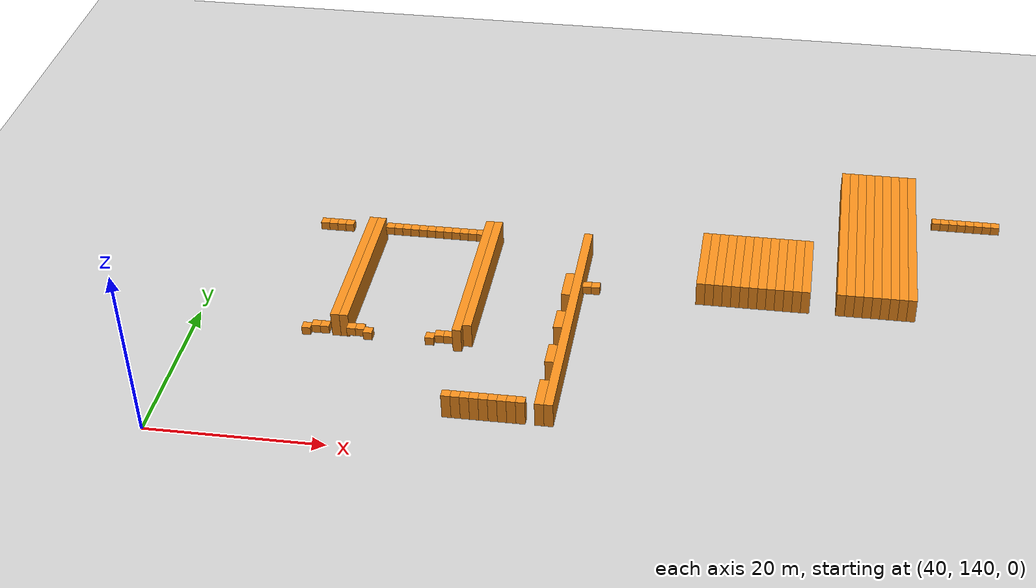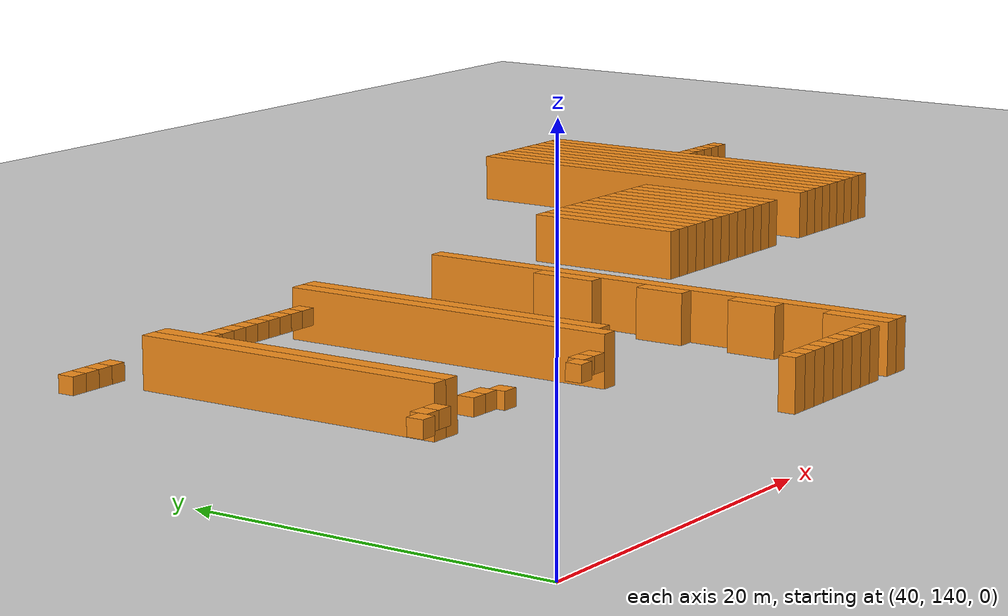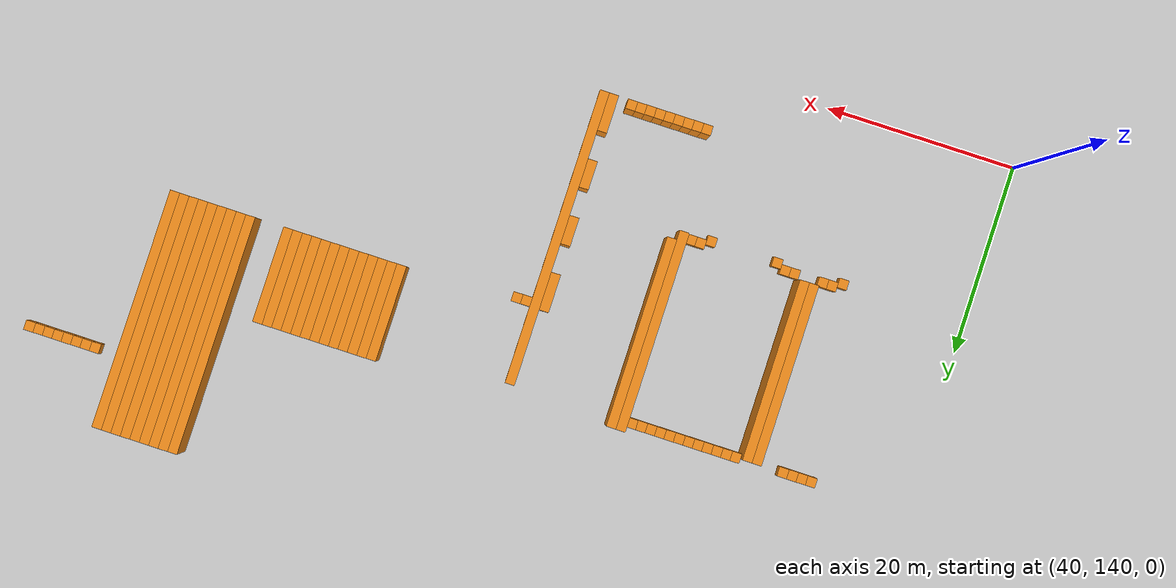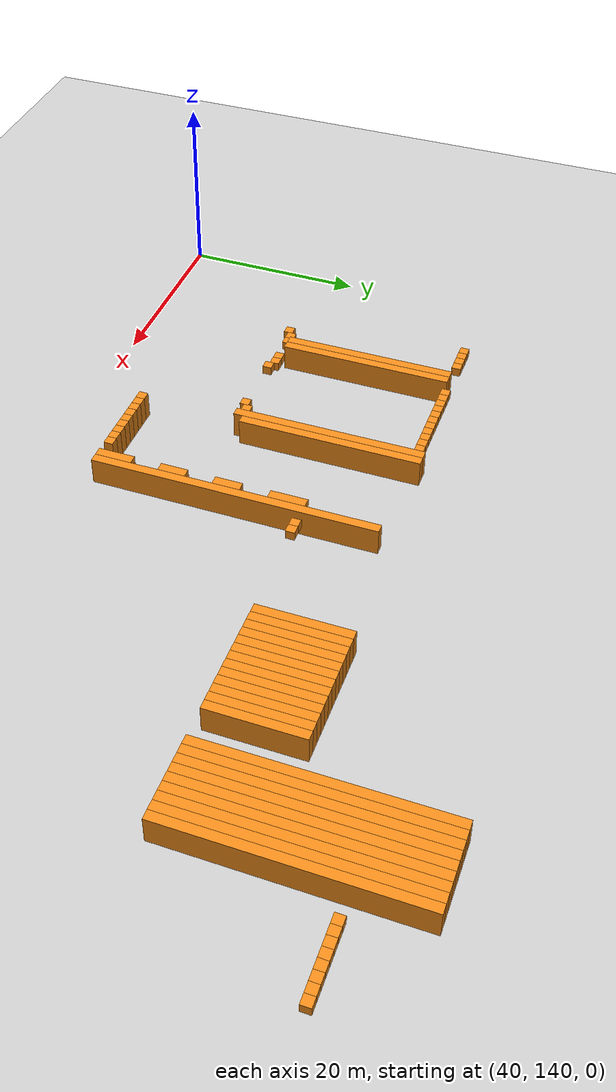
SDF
<sdf version="1.6">
 <world name="default">
  <include><uri>model://ground_plane</uri></include>
  <model name="unit_box_556">
   <pose>50.50   177.00     1.50 0 0 0</pose>
   <static>1</static>
   <link name="link">
    <inertial>
     <mass>5000</mass>
     <inertia><ixx>200</ixx><ixy>0</ixy><ixz>0</ixz><iyy>200</iyy><iyz>0</iyz><izz>200</izz></inertia>
    </inertial>
    <collision name="collision"><geometry><box><size>1 1 1</size></box></geometry></collision>
    <visual name="visual">
     <geometry><box><size>1 1 1</size></box></geometry>
     <material>
      <script><name>Gazebo/Orange</name><uri>file://media/materials/scripts/gazebo.material</uri></script>
     </material>
    </visual>
   </link>
  </model>
  <model name="unit_box_568">
   <pose>51.50   177.00     1.50 0 0 0</pose>
   <static>1</static>
   <link name="link">
    <inertial>
     <mass>5000</mass>
     <inertia><ixx>200</ixx><ixy>0</ixy><ixz>0</ixz><iyy>200</iyy><iyz>0</iyz><izz>200</izz></inertia>
    </inertial>
    <collision name="collision"><geometry><box><size>1 1 1</size></box></geometry></collision>
    <visual name="visual">
     <geometry><box><size>1 1 1</size></box></geometry>
     <material>
      <script><name>Gazebo/Orange</name><uri>file://media/materials/scripts/gazebo.material</uri></script>
     </material>
    </visual>
   </link>
  </model>
  <model name="unit_box_578">
   <pose>52.50   177.00     1.50 0 0 0</pose>
   <static>1</static>
   <link name="link">
    <inertial>
     <mass>5000</mass>
     <inertia><ixx>200</ixx><ixy>0</ixy><ixz>0</ixz><iyy>200</iyy><iyz>0</iyz><izz>200</izz></inertia>
    </inertial>
    <collision name="collision"><geometry><box><size>1 1 1</size></box></geometry></collision>
    <visual name="visual">
     <geometry><box><size>1 1 1</size></box></geometry>
     <material>
      <script><name>Gazebo/Orange</name><uri>file://media/materials/scripts/gazebo.material</uri></script>
     </material>
    </visual>
   </link>
  </model>
  <model name="unit_box_588">
   <pose>53.50   157.00     1.50 0 0 0</pose>
   <static>1</static>
   <link name="link">
    <inertial>
     <mass>5000</mass>
     <inertia><ixx>200</ixx><ixy>0</ixy><ixz>0</ixz><iyy>200</iyy><iyz>0</iyz><izz>200</izz></inertia>
    </inertial>
    <collision name="collision"><geometry><box><size>1 1 1</size></box></geometry></collision>
    <visual name="visual">
     <geometry><box><size>1 1 1</size></box></geometry>
     <material>
      <script><name>Gazebo/Orange</name><uri>file://media/materials/scripts/gazebo.material</uri></script>
     </material>
    </visual>
   </link>
  </model>
  <model name="unit_box_589">
   <pose>53.50   177.00     1.50 0 0 0</pose>
   <static>1</static>
   <link name="link">
    <inertial>
     <mass>5000</mass>
     <inertia><ixx>200</ixx><ixy>0</ixy><ixz>0</ixz><iyy>200</iyy><iyz>0</iyz><izz>200</izz></inertia>
    </inertial>
    <collision name="collision"><geometry><box><size>1 1 1</size></box></geometry></collision>
    <visual name="visual">
     <geometry><box><size>1 1 1</size></box></geometry>
     <material>
      <script><name>Gazebo/Orange</name><uri>file://media/materials/scripts/gazebo.material</uri></script>
     </material>
    </visual>
   </link>
  </model>
  <model name="unit_box_599">
   <pose>54.50   157.50     1.50 0 0 0</pose>
   <static>1</static>
   <link name="link">
    <inertial>
     <mass>5000</mass>
     <inertia><ixx>200</ixx><ixy>0</ixy><ixz>0</ixz><iyy>200</iyy><iyz>0</iyz><izz>200</izz></inertia>
    </inertial>
    <collision name="collision"><geometry><box><size>1 1 1</size></box></geometry></collision>
    <visual name="visual">
     <geometry><box><size>1 1 1</size></box></geometry>
     <material>
      <script><name>Gazebo/Orange</name><uri>file://media/materials/scripts/gazebo.material</uri></script>
     </material>
    </visual>
   </link>
  </model>
  <model name="unit_box_608">
   <pose>55.50   157.50     1.50 0 0 0</pose>
   <static>1</static>
   <link name="link">
    <inertial>
     <mass>5000</mass>
     <inertia><ixx>200</ixx><ixy>0</ixy><ixz>0</ixz><iyy>200</iyy><iyz>0</iyz><izz>200</izz></inertia>
    </inertial>
    <collision name="collision"><geometry><box><size>1 1 1</size></box></geometry></collision>
    <visual name="visual">
     <geometry><box><size>1 1 1</size></box></geometry>
     <material>
      <script><name>Gazebo/Orange</name><uri>file://media/materials/scripts/gazebo.material</uri></script>
     </material>
    </visual>
   </link>
  </model>
  <model name="unit_box_617">
   <pose>56.50   167.50     1.50 0 0 0</pose>
   <static>1</static>
   <link name="link">
    <inertial>
     <mass>5000</mass>
     <inertia><ixx>200</ixx><ixy>0</ixy><ixz>0</ixz><iyy>200</iyy><iyz>0</iyz><izz>200</izz></inertia>
    </inertial>
    <collision name="collision"><geometry><box><size>1 19 3</size></box></geometry></collision>
    <visual name="visual">
     <geometry><box><size>1 19 3</size></box></geometry>
     <material>
      <script><name>Gazebo/Orange</name><uri>file://media/materials/scripts/gazebo.material</uri></script>
     </material>
    </visual>
   </link>
  </model>
  <model name="unit_box_627">
   <pose>57.50   167.50     1.50 0 0 0</pose>
   <static>1</static>
   <link name="link">
    <inertial>
     <mass>5000</mass>
     <inertia><ixx>200</ixx><ixy>0</ixy><ixz>0</ixz><iyy>200</iyy><iyz>0</iyz><izz>200</izz></inertia>
    </inertial>
    <collision name="collision"><geometry><box><size>1 19 3</size></box></geometry></collision>
    <visual name="visual">
     <geometry><box><size>1 19 3</size></box></geometry>
     <material>
      <script><name>Gazebo/Orange</name><uri>file://media/materials/scripts/gazebo.material</uri></script>
     </material>
    </visual>
   </link>
  </model>
  <model name="unit_box_636">
   <pose>58.50   157.50     1.50 0 0 0</pose>
   <static>1</static>
   <link name="link">
    <inertial>
     <mass>5000</mass>
     <inertia><ixx>200</ixx><ixy>0</ixy><ixz>0</ixz><iyy>200</iyy><iyz>0</iyz><izz>200</izz></inertia>
    </inertial>
    <collision name="collision"><geometry><box><size>1 1 1</size></box></geometry></collision>
    <visual name="visual">
     <geometry><box><size>1 1 1</size></box></geometry>
     <material>
      <script><name>Gazebo/Orange</name><uri>file://media/materials/scripts/gazebo.material</uri></script>
     </material>
    </visual>
   </link>
  </model>
  <model name="unit_box_637">
   <pose>58.50   177.00     1.50 0 0 0</pose>
   <static>1</static>
   <link name="link">
    <inertial>
     <mass>5000</mass>
     <inertia><ixx>200</ixx><ixy>0</ixy><ixz>0</ixz><iyy>200</iyy><iyz>0</iyz><izz>200</izz></inertia>
    </inertial>
    <collision name="collision"><geometry><box><size>1 1 1</size></box></geometry></collision>
    <visual name="visual">
     <geometry><box><size>1 1 1</size></box></geometry>
     <material>
      <script><name>Gazebo/Orange</name><uri>file://media/materials/scripts/gazebo.material</uri></script>
     </material>
    </visual>
   </link>
  </model>
  <model name="unit_box_648">
   <pose>59.50   157.50     1.50 0 0 0</pose>
   <static>1</static>
   <link name="link">
    <inertial>
     <mass>5000</mass>
     <inertia><ixx>200</ixx><ixy>0</ixy><ixz>0</ixz><iyy>200</iyy><iyz>0</iyz><izz>200</izz></inertia>
    </inertial>
    <collision name="collision"><geometry><box><size>1 1 1</size></box></geometry></collision>
    <visual name="visual">
     <geometry><box><size>1 1 1</size></box></geometry>
     <material>
      <script><name>Gazebo/Orange</name><uri>file://media/materials/scripts/gazebo.material</uri></script>
     </material>
    </visual>
   </link>
  </model>
  <model name="unit_box_649">
   <pose>59.50   177.00     1.50 0 0 0</pose>
   <static>1</static>
   <link name="link">
    <inertial>
     <mass>5000</mass>
     <inertia><ixx>200</ixx><ixy>0</ixy><ixz>0</ixz><iyy>200</iyy><iyz>0</iyz><izz>200</izz></inertia>
    </inertial>
    <collision name="collision"><geometry><box><size>1 1 1</size></box></geometry></collision>
    <visual name="visual">
     <geometry><box><size>1 1 1</size></box></geometry>
     <material>
      <script><name>Gazebo/Orange</name><uri>file://media/materials/scripts/gazebo.material</uri></script>
     </material>
    </visual>
   </link>
  </model>
  <model name="unit_box_660">
   <pose>60.50   157.00     1.50 0 0 0</pose>
   <static>1</static>
   <link name="link">
    <inertial>
     <mass>5000</mass>
     <inertia><ixx>200</ixx><ixy>0</ixy><ixz>0</ixz><iyy>200</iyy><iyz>0</iyz><izz>200</izz></inertia>
    </inertial>
    <collision name="collision"><geometry><box><size>1 1 1</size></box></geometry></collision>
    <visual name="visual">
     <geometry><box><size>1 1 1</size></box></geometry>
     <material>
      <script><name>Gazebo/Orange</name><uri>file://media/materials/scripts/gazebo.material</uri></script>
     </material>
    </visual>
   </link>
  </model>
  <model name="unit_box_661">
   <pose>60.50   177.00     1.50 0 0 0</pose>
   <static>1</static>
   <link name="link">
    <inertial>
     <mass>5000</mass>
     <inertia><ixx>200</ixx><ixy>0</ixy><ixz>0</ixz><iyy>200</iyy><iyz>0</iyz><izz>200</izz></inertia>
    </inertial>
    <collision name="collision"><geometry><box><size>1 1 1</size></box></geometry></collision>
    <visual name="visual">
     <geometry><box><size>1 1 1</size></box></geometry>
     <material>
      <script><name>Gazebo/Orange</name><uri>file://media/materials/scripts/gazebo.material</uri></script>
     </material>
    </visual>
   </link>
  </model>
  <model name="unit_box_672">
   <pose>61.50   177.00     1.50 0 0 0</pose>
   <static>1</static>
   <link name="link">
    <inertial>
     <mass>5000</mass>
     <inertia><ixx>200</ixx><ixy>0</ixy><ixz>0</ixz><iyy>200</iyy><iyz>0</iyz><izz>200</izz></inertia>
    </inertial>
    <collision name="collision"><geometry><box><size>1 1 1</size></box></geometry></collision>
    <visual name="visual">
     <geometry><box><size>1 1 1</size></box></geometry>
     <material>
      <script><name>Gazebo/Orange</name><uri>file://media/materials/scripts/gazebo.material</uri></script>
     </material>
    </visual>
   </link>
  </model>
  <model name="unit_box_682">
   <pose>62.50   177.00     1.50 0 0 0</pose>
   <static>1</static>
   <link name="link">
    <inertial>
     <mass>5000</mass>
     <inertia><ixx>200</ixx><ixy>0</ixy><ixz>0</ixz><iyy>200</iyy><iyz>0</iyz><izz>200</izz></inertia>
    </inertial>
    <collision name="collision"><geometry><box><size>1 1 1</size></box></geometry></collision>
    <visual name="visual">
     <geometry><box><size>1 1 1</size></box></geometry>
     <material>
      <script><name>Gazebo/Orange</name><uri>file://media/materials/scripts/gazebo.material</uri></script>
     </material>
    </visual>
   </link>
  </model>
  <model name="unit_box_692">
   <pose>63.50   177.00     1.50 0 0 0</pose>
   <static>1</static>
   <link name="link">
    <inertial>
     <mass>5000</mass>
     <inertia><ixx>200</ixx><ixy>0</ixy><ixz>0</ixz><iyy>200</iyy><iyz>0</iyz><izz>200</izz></inertia>
    </inertial>
    <collision name="collision"><geometry><box><size>1 1 1</size></box></geometry></collision>
    <visual name="visual">
     <geometry><box><size>1 1 1</size></box></geometry>
     <material>
      <script><name>Gazebo/Orange</name><uri>file://media/materials/scripts/gazebo.material</uri></script>
     </material>
    </visual>
   </link>
  </model>
  <model name="unit_box_701">
   <pose>64.50   177.00     1.50 0 0 0</pose>
   <static>1</static>
   <link name="link">
    <inertial>
     <mass>5000</mass>
     <inertia><ixx>200</ixx><ixy>0</ixy><ixz>0</ixz><iyy>200</iyy><iyz>0</iyz><izz>200</izz></inertia>
    </inertial>
    <collision name="collision"><geometry><box><size>1 1 1</size></box></geometry></collision>
    <visual name="visual">
     <geometry><box><size>1 1 1</size></box></geometry>
     <material>
      <script><name>Gazebo/Orange</name><uri>file://media/materials/scripts/gazebo.material</uri></script>
     </material>
    </visual>
   </link>
  </model>
  <model name="unit_box_710">
   <pose>65.50   177.00     1.50 0 0 0</pose>
   <static>1</static>
   <link name="link">
    <inertial>
     <mass>5000</mass>
     <inertia><ixx>200</ixx><ixy>0</ixy><ixz>0</ixz><iyy>200</iyy><iyz>0</iyz><izz>200</izz></inertia>
    </inertial>
    <collision name="collision"><geometry><box><size>1 1 1</size></box></geometry></collision>
    <visual name="visual">
     <geometry><box><size>1 1 1</size></box></geometry>
     <material>
      <script><name>Gazebo/Orange</name><uri>file://media/materials/scripts/gazebo.material</uri></script>
     </material>
    </visual>
   </link>
  </model>
  <model name="unit_box_719">
   <pose>66.50   177.00     1.50 0 0 0</pose>
   <static>1</static>
   <link name="link">
    <inertial>
     <mass>5000</mass>
     <inertia><ixx>200</ixx><ixy>0</ixy><ixz>0</ixz><iyy>200</iyy><iyz>0</iyz><izz>200</izz></inertia>
    </inertial>
    <collision name="collision"><geometry><box><size>1 1 1</size></box></geometry></collision>
    <visual name="visual">
     <geometry><box><size>1 1 1</size></box></geometry>
     <material>
      <script><name>Gazebo/Orange</name><uri>file://media/materials/scripts/gazebo.material</uri></script>
     </material>
    </visual>
   </link>
  </model>
  <model name="unit_box_728">
   <pose>67.50   157.00     1.50 0 0 0</pose>
   <static>1</static>
   <link name="link">
    <inertial>
     <mass>5000</mass>
     <inertia><ixx>200</ixx><ixy>0</ixy><ixz>0</ixz><iyy>200</iyy><iyz>0</iyz><izz>200</izz></inertia>
    </inertial>
    <collision name="collision"><geometry><box><size>1 1 1</size></box></geometry></collision>
    <visual name="visual">
     <geometry><box><size>1 1 1</size></box></geometry>
     <material>
      <script><name>Gazebo/Orange</name><uri>file://media/materials/scripts/gazebo.material</uri></script>
     </material>
    </visual>
   </link>
  </model>
  <model name="unit_box_729">
   <pose>67.50   177.00     1.50 0 0 0</pose>
   <static>1</static>
   <link name="link">
    <inertial>
     <mass>5000</mass>
     <inertia><ixx>200</ixx><ixy>0</ixy><ixz>0</ixz><iyy>200</iyy><iyz>0</iyz><izz>200</izz></inertia>
    </inertial>
    <collision name="collision"><geometry><box><size>1 1 1</size></box></geometry></collision>
    <visual name="visual">
     <geometry><box><size>1 1 1</size></box></geometry>
     <material>
      <script><name>Gazebo/Orange</name><uri>file://media/materials/scripts/gazebo.material</uri></script>
     </material>
    </visual>
   </link>
  </model>
  <model name="unit_box_738">
   <pose>68.50   157.50     1.50 0 0 0</pose>
   <static>1</static>
   <link name="link">
    <inertial>
     <mass>5000</mass>
     <inertia><ixx>200</ixx><ixy>0</ixy><ixz>0</ixz><iyy>200</iyy><iyz>0</iyz><izz>200</izz></inertia>
    </inertial>
    <collision name="collision"><geometry><box><size>1 1 1</size></box></geometry></collision>
    <visual name="visual">
     <geometry><box><size>1 1 1</size></box></geometry>
     <material>
      <script><name>Gazebo/Orange</name><uri>file://media/materials/scripts/gazebo.material</uri></script>
     </material>
    </visual>
   </link>
  </model>
  <model name="unit_box_739">
   <pose>68.50   177.00     1.50 0 0 0</pose>
   <static>1</static>
   <link name="link">
    <inertial>
     <mass>5000</mass>
     <inertia><ixx>200</ixx><ixy>0</ixy><ixz>0</ixz><iyy>200</iyy><iyz>0</iyz><izz>200</izz></inertia>
    </inertial>
    <collision name="collision"><geometry><box><size>1 1 1</size></box></geometry></collision>
    <visual name="visual">
     <geometry><box><size>1 1 1</size></box></geometry>
     <material>
      <script><name>Gazebo/Orange</name><uri>file://media/materials/scripts/gazebo.material</uri></script>
     </material>
    </visual>
   </link>
  </model>
  <model name="unit_box_748">
   <pose>69.50   157.50     1.50 0 0 0</pose>
   <static>1</static>
   <link name="link">
    <inertial>
     <mass>5000</mass>
     <inertia><ixx>200</ixx><ixy>0</ixy><ixz>0</ixz><iyy>200</iyy><iyz>0</iyz><izz>200</izz></inertia>
    </inertial>
    <collision name="collision"><geometry><box><size>1 1 1</size></box></geometry></collision>
    <visual name="visual">
     <geometry><box><size>1 1 1</size></box></geometry>
     <material>
      <script><name>Gazebo/Orange</name><uri>file://media/materials/scripts/gazebo.material</uri></script>
     </material>
    </visual>
   </link>
  </model>
  <model name="unit_box_749">
   <pose>69.50   177.00     1.50 0 0 0</pose>
   <static>1</static>
   <link name="link">
    <inertial>
     <mass>5000</mass>
     <inertia><ixx>200</ixx><ixy>0</ixy><ixz>0</ixz><iyy>200</iyy><iyz>0</iyz><izz>200</izz></inertia>
    </inertial>
    <collision name="collision"><geometry><box><size>1 1 1</size></box></geometry></collision>
    <visual name="visual">
     <geometry><box><size>1 1 1</size></box></geometry>
     <material>
      <script><name>Gazebo/Orange</name><uri>file://media/materials/scripts/gazebo.material</uri></script>
     </material>
    </visual>
   </link>
  </model>
  <model name="unit_box_760">
   <pose>70.50   167.50     1.50 0 0 0</pose>
   <static>1</static>
   <link name="link">
    <inertial>
     <mass>5000</mass>
     <inertia><ixx>200</ixx><ixy>0</ixy><ixz>0</ixz><iyy>200</iyy><iyz>0</iyz><izz>200</izz></inertia>
    </inertial>
    <collision name="collision"><geometry><box><size>1 21 3</size></box></geometry></collision>
    <visual name="visual">
     <geometry><box><size>1 21 3</size></box></geometry>
     <material>
      <script><name>Gazebo/Orange</name><uri>file://media/materials/scripts/gazebo.material</uri></script>
     </material>
    </visual>
   </link>
  </model>
  <model name="unit_box_770">
   <pose>71.50   146.50     1.50 0 0 0</pose>
   <static>1</static>
   <link name="link">
    <inertial>
     <mass>5000</mass>
     <inertia><ixx>200</ixx><ixy>0</ixy><ixz>0</ixz><iyy>200</iyy><iyz>0</iyz><izz>200</izz></inertia>
    </inertial>
    <collision name="collision"><geometry><box><size>1 1 3</size></box></geometry></collision>
    <visual name="visual">
     <geometry><box><size>1 1 3</size></box></geometry>
     <material>
      <script><name>Gazebo/Orange</name><uri>file://media/materials/scripts/gazebo.material</uri></script>
     </material>
    </visual>
   </link>
  </model>
  <model name="unit_box_771">
   <pose>71.50   168.00     1.50 0 0 0</pose>
   <static>1</static>
   <link name="link">
    <inertial>
     <mass>5000</mass>
     <inertia><ixx>200</ixx><ixy>0</ixy><ixz>0</ixz><iyy>200</iyy><iyz>0</iyz><izz>200</izz></inertia>
    </inertial>
    <collision name="collision"><geometry><box><size>1 20 3</size></box></geometry></collision>
    <visual name="visual">
     <geometry><box><size>1 20 3</size></box></geometry>
     <material>
      <script><name>Gazebo/Orange</name><uri>file://media/materials/scripts/gazebo.material</uri></script>
     </material>
    </visual>
   </link>
  </model>
  <model name="unit_box_781">
   <pose>72.50   146.50     1.50 0 0 0</pose>
   <static>1</static>
   <link name="link">
    <inertial>
     <mass>5000</mass>
     <inertia><ixx>200</ixx><ixy>0</ixy><ixz>0</ixz><iyy>200</iyy><iyz>0</iyz><izz>200</izz></inertia>
    </inertial>
    <collision name="collision"><geometry><box><size>1 1 3</size></box></geometry></collision>
    <visual name="visual">
     <geometry><box><size>1 1 3</size></box></geometry>
     <material>
      <script><name>Gazebo/Orange</name><uri>file://media/materials/scripts/gazebo.material</uri></script>
     </material>
    </visual>
   </link>
  </model>
  <model name="unit_box_789">
   <pose>73.50   146.50     1.50 0 0 0</pose>
   <static>1</static>
   <link name="link">
    <inertial>
     <mass>5000</mass>
     <inertia><ixx>200</ixx><ixy>0</ixy><ixz>0</ixz><iyy>200</iyy><iyz>0</iyz><izz>200</izz></inertia>
    </inertial>
    <collision name="collision"><geometry><box><size>1 1 3</size></box></geometry></collision>
    <visual name="visual">
     <geometry><box><size>1 1 3</size></box></geometry>
     <material>
      <script><name>Gazebo/Orange</name><uri>file://media/materials/scripts/gazebo.material</uri></script>
     </material>
    </visual>
   </link>
  </model>
  <model name="unit_box_796">
   <pose>74.50   146.50     1.50 0 0 0</pose>
   <static>1</static>
   <link name="link">
    <inertial>
     <mass>5000</mass>
     <inertia><ixx>200</ixx><ixy>0</ixy><ixz>0</ixz><iyy>200</iyy><iyz>0</iyz><izz>200</izz></inertia>
    </inertial>
    <collision name="collision"><geometry><box><size>1 1 3</size></box></geometry></collision>
    <visual name="visual">
     <geometry><box><size>1 1 3</size></box></geometry>
     <material>
      <script><name>Gazebo/Orange</name><uri>file://media/materials/scripts/gazebo.material</uri></script>
     </material>
    </visual>
   </link>
  </model>
  <model name="unit_box_802">
   <pose>75.50   146.50     1.50 0 0 0</pose>
   <static>1</static>
   <link name="link">
    <inertial>
     <mass>5000</mass>
     <inertia><ixx>200</ixx><ixy>0</ixy><ixz>0</ixz><iyy>200</iyy><iyz>0</iyz><izz>200</izz></inertia>
    </inertial>
    <collision name="collision"><geometry><box><size>1 1 3</size></box></geometry></collision>
    <visual name="visual">
     <geometry><box><size>1 1 3</size></box></geometry>
     <material>
      <script><name>Gazebo/Orange</name><uri>file://media/materials/scripts/gazebo.material</uri></script>
     </material>
    </visual>
   </link>
  </model>
  <model name="unit_box_808">
   <pose>76.50   146.50     1.50 0 0 0</pose>
   <static>1</static>
   <link name="link">
    <inertial>
     <mass>5000</mass>
     <inertia><ixx>200</ixx><ixy>0</ixy><ixz>0</ixz><iyy>200</iyy><iyz>0</iyz><izz>200</izz></inertia>
    </inertial>
    <collision name="collision"><geometry><box><size>1 1 3</size></box></geometry></collision>
    <visual name="visual">
     <geometry><box><size>1 1 3</size></box></geometry>
     <material>
      <script><name>Gazebo/Orange</name><uri>file://media/materials/scripts/gazebo.material</uri></script>
     </material>
    </visual>
   </link>
  </model>
  <model name="unit_box_814">
   <pose>77.50   146.50     1.50 0 0 0</pose>
   <static>1</static>
   <link name="link">
    <inertial>
     <mass>5000</mass>
     <inertia><ixx>200</ixx><ixy>0</ixy><ixz>0</ixz><iyy>200</iyy><iyz>0</iyz><izz>200</izz></inertia>
    </inertial>
    <collision name="collision"><geometry><box><size>1 1 3</size></box></geometry></collision>
    <visual name="visual">
     <geometry><box><size>1 1 3</size></box></geometry>
     <material>
      <script><name>Gazebo/Orange</name><uri>file://media/materials/scripts/gazebo.material</uri></script>
     </material>
    </visual>
   </link>
  </model>
  <model name="unit_box_820">
   <pose>78.50   146.50     1.50 0 0 0</pose>
   <static>1</static>
   <link name="link">
    <inertial>
     <mass>5000</mass>
     <inertia><ixx>200</ixx><ixy>0</ixy><ixz>0</ixz><iyy>200</iyy><iyz>0</iyz><izz>200</izz></inertia>
    </inertial>
    <collision name="collision"><geometry><box><size>1 1 3</size></box></geometry></collision>
    <visual name="visual">
     <geometry><box><size>1 1 3</size></box></geometry>
     <material>
      <script><name>Gazebo/Orange</name><uri>file://media/materials/scripts/gazebo.material</uri></script>
     </material>
    </visual>
   </link>
  </model>
  <model name="unit_box_827">
   <pose>79.50   146.50     1.50 0 0 0</pose>
   <static>1</static>
   <link name="link">
    <inertial>
     <mass>5000</mass>
     <inertia><ixx>200</ixx><ixy>0</ixy><ixz>0</ixz><iyy>200</iyy><iyz>0</iyz><izz>200</izz></inertia>
    </inertial>
    <collision name="collision"><geometry><box><size>1 1 3</size></box></geometry></collision>
    <visual name="visual">
     <geometry><box><size>1 1 3</size></box></geometry>
     <material>
      <script><name>Gazebo/Orange</name><uri>file://media/materials/scripts/gazebo.material</uri></script>
     </material>
    </visual>
   </link>
  </model>
  <model name="unit_box_845">
   <pose>81.50   148.00     1.50 0 0 0</pose>
   <static>1</static>
   <link name="link">
    <inertial>
     <mass>5000</mass>
     <inertia><ixx>200</ixx><ixy>0</ixy><ixz>0</ixz><iyy>200</iyy><iyz>0</iyz><izz>200</izz></inertia>
    </inertial>
    <collision name="collision"><geometry><box><size>1 4 3</size></box></geometry></collision>
    <visual name="visual">
     <geometry><box><size>1 4 3</size></box></geometry>
     <material>
      <script><name>Gazebo/Orange</name><uri>file://media/materials/scripts/gazebo.material</uri></script>
     </material>
    </visual>
   </link>
  </model>
  <model name="unit_box_846">
   <pose>81.50   154.50     1.50 0 0 0</pose>
   <static>1</static>
   <link name="link">
    <inertial>
     <mass>5000</mass>
     <inertia><ixx>200</ixx><ixy>0</ixy><ixz>0</ixz><iyy>200</iyy><iyz>0</iyz><izz>200</izz></inertia>
    </inertial>
    <collision name="collision"><geometry><box><size>1 3 3</size></box></geometry></collision>
    <visual name="visual">
     <geometry><box><size>1 3 3</size></box></geometry>
     <material>
      <script><name>Gazebo/Orange</name><uri>file://media/materials/scripts/gazebo.material</uri></script>
     </material>
    </visual>
   </link>
  </model>
  <model name="unit_box_847">
   <pose>81.50   160.50     1.50 0 0 0</pose>
   <static>1</static>
   <link name="link">
    <inertial>
     <mass>5000</mass>
     <inertia><ixx>200</ixx><ixy>0</ixy><ixz>0</ixz><iyy>200</iyy><iyz>0</iyz><izz>200</izz></inertia>
    </inertial>
    <collision name="collision"><geometry><box><size>1 3 3</size></box></geometry></collision>
    <visual name="visual">
     <geometry><box><size>1 3 3</size></box></geometry>
     <material>
      <script><name>Gazebo/Orange</name><uri>file://media/materials/scripts/gazebo.material</uri></script>
     </material>
    </visual>
   </link>
  </model>
  <model name="unit_box_848">
   <pose>81.50   167.00     1.50 0 0 0</pose>
   <static>1</static>
   <link name="link">
    <inertial>
     <mass>5000</mass>
     <inertia><ixx>200</ixx><ixy>0</ixy><ixz>0</ixz><iyy>200</iyy><iyz>0</iyz><izz>200</izz></inertia>
    </inertial>
    <collision name="collision"><geometry><box><size>1 4 3</size></box></geometry></collision>
    <visual name="visual">
     <geometry><box><size>1 4 3</size></box></geometry>
     <material>
      <script><name>Gazebo/Orange</name><uri>file://media/materials/scripts/gazebo.material</uri></script>
     </material>
    </visual>
   </link>
  </model>
  <model name="unit_box_862">
   <pose>82.50   161.50     1.50 0 0 0</pose>
   <static>1</static>
   <link name="link">
    <inertial>
     <mass>5000</mass>
     <inertia><ixx>200</ixx><ixy>0</ixy><ixz>0</ixz><iyy>200</iyy><iyz>0</iyz><izz>200</izz></inertia>
    </inertial>
    <collision name="collision"><geometry><box><size>1 31 3</size></box></geometry></collision>
    <visual name="visual">
     <geometry><box><size>1 31 3</size></box></geometry>
     <material>
      <script><name>Gazebo/Orange</name><uri>file://media/materials/scripts/gazebo.material</uri></script>
     </material>
    </visual>
   </link>
  </model>
  <model name="unit_box_875">
   <pose>83.50   168.50     1.50 0 0 0</pose>
   <static>1</static>
   <link name="link">
    <inertial>
     <mass>5000</mass>
     <inertia><ixx>200</ixx><ixy>0</ixy><ixz>0</ixz><iyy>200</iyy><iyz>0</iyz><izz>200</izz></inertia>
    </inertial>
    <collision name="collision"><geometry><box><size>1 1 1</size></box></geometry></collision>
    <visual name="visual">
     <geometry><box><size>1 1 1</size></box></geometry>
     <material>
      <script><name>Gazebo/Orange</name><uri>file://media/materials/scripts/gazebo.material</uri></script>
     </material>
    </visual>
   </link>
  </model>
  <model name="unit_box_885">
   <pose>84.50   168.50     1.50 0 0 0</pose>
   <static>1</static>
   <link name="link">
    <inertial>
     <mass>5000</mass>
     <inertia><ixx>200</ixx><ixy>0</ixy><ixz>0</ixz><iyy>200</iyy><iyz>0</iyz><izz>200</izz></inertia>
    </inertial>
    <collision name="collision"><geometry><box><size>1 1 1</size></box></geometry></collision>
    <visual name="visual">
     <geometry><box><size>1 1 1</size></box></geometry>
     <material>
      <script><name>Gazebo/Orange</name><uri>file://media/materials/scripts/gazebo.material</uri></script>
     </material>
    </visual>
   </link>
  </model>
  <model name="unit_box_977">
   <pose>96.50   174.00     1.50 0 0 0</pose>
   <static>1</static>
   <link name="link">
    <inertial>
     <mass>5000</mass>
     <inertia><ixx>200</ixx><ixy>0</ixy><ixz>0</ixz><iyy>200</iyy><iyz>0</iyz><izz>200</izz></inertia>
    </inertial>
    <collision name="collision"><geometry><box><size>1 10 3</size></box></geometry></collision>
    <visual name="visual">
     <geometry><box><size>1 10 3</size></box></geometry>
     <material>
      <script><name>Gazebo/Orange</name><uri>file://media/materials/scripts/gazebo.material</uri></script>
     </material>
    </visual>
   </link>
  </model>
  <model name="unit_box_985">
   <pose>97.50   174.00     1.50 0 0 0</pose>
   <static>1</static>
   <link name="link">
    <inertial>
     <mass>5000</mass>
     <inertia><ixx>200</ixx><ixy>0</ixy><ixz>0</ixz><iyy>200</iyy><iyz>0</iyz><izz>200</izz></inertia>
    </inertial>
    <collision name="collision"><geometry><box><size>1 10 3</size></box></geometry></collision>
    <visual name="visual">
     <geometry><box><size>1 10 3</size></box></geometry>
     <material>
      <script><name>Gazebo/Orange</name><uri>file://media/materials/scripts/gazebo.material</uri></script>
     </material>
    </visual>
   </link>
  </model>
  <model name="unit_box_993">
   <pose>98.50   174.00     1.50 0 0 0</pose>
   <static>1</static>
   <link name="link">
    <inertial>
     <mass>5000</mass>
     <inertia><ixx>200</ixx><ixy>0</ixy><ixz>0</ixz><iyy>200</iyy><iyz>0</iyz><izz>200</izz></inertia>
    </inertial>
    <collision name="collision"><geometry><box><size>1 10 3</size></box></geometry></collision>
    <visual name="visual">
     <geometry><box><size>1 10 3</size></box></geometry>
     <material>
      <script><name>Gazebo/Orange</name><uri>file://media/materials/scripts/gazebo.material</uri></script>
     </material>
    </visual>
   </link>
  </model>
  <model name="unit_box_1001">
   <pose>99.50   174.00     1.50 0 0 0</pose>
   <static>1</static>
   <link name="link">
    <inertial>
     <mass>5000</mass>
     <inertia><ixx>200</ixx><ixy>0</ixy><ixz>0</ixz><iyy>200</iyy><iyz>0</iyz><izz>200</izz></inertia>
    </inertial>
    <collision name="collision"><geometry><box><size>1 10 3</size></box></geometry></collision>
    <visual name="visual">
     <geometry><box><size>1 10 3</size></box></geometry>
     <material>
      <script><name>Gazebo/Orange</name><uri>file://media/materials/scripts/gazebo.material</uri></script>
     </material>
    </visual>
   </link>
  </model>
  <model name="unit_box_1008">
   <pose>100.50   174.00     1.50 0 0 0</pose>
   <static>1</static>
   <link name="link">
    <inertial>
     <mass>5000</mass>
     <inertia><ixx>200</ixx><ixy>0</ixy><ixz>0</ixz><iyy>200</iyy><iyz>0</iyz><izz>200</izz></inertia>
    </inertial>
    <collision name="collision"><geometry><box><size>1 10 3</size></box></geometry></collision>
    <visual name="visual">
     <geometry><box><size>1 10 3</size></box></geometry>
     <material>
      <script><name>Gazebo/Orange</name><uri>file://media/materials/scripts/gazebo.material</uri></script>
     </material>
    </visual>
   </link>
  </model>
  <model name="unit_box_1014">
   <pose>101.50   174.00     1.50 0 0 0</pose>
   <static>1</static>
   <link name="link">
    <inertial>
     <mass>5000</mass>
     <inertia><ixx>200</ixx><ixy>0</ixy><ixz>0</ixz><iyy>200</iyy><iyz>0</iyz><izz>200</izz></inertia>
    </inertial>
    <collision name="collision"><geometry><box><size>1 10 3</size></box></geometry></collision>
    <visual name="visual">
     <geometry><box><size>1 10 3</size></box></geometry>
     <material>
      <script><name>Gazebo/Orange</name><uri>file://media/materials/scripts/gazebo.material</uri></script>
     </material>
    </visual>
   </link>
  </model>
  <model name="unit_box_1021">
   <pose>102.50   174.00     1.50 0 0 0</pose>
   <static>1</static>
   <link name="link">
    <inertial>
     <mass>5000</mass>
     <inertia><ixx>200</ixx><ixy>0</ixy><ixz>0</ixz><iyy>200</iyy><iyz>0</iyz><izz>200</izz></inertia>
    </inertial>
    <collision name="collision"><geometry><box><size>1 10 3</size></box></geometry></collision>
    <visual name="visual">
     <geometry><box><size>1 10 3</size></box></geometry>
     <material>
      <script><name>Gazebo/Orange</name><uri>file://media/materials/scripts/gazebo.material</uri></script>
     </material>
    </visual>
   </link>
  </model>
  <model name="unit_box_1028">
   <pose>103.50   174.00     1.50 0 0 0</pose>
   <static>1</static>
   <link name="link">
    <inertial>
     <mass>5000</mass>
     <inertia><ixx>200</ixx><ixy>0</ixy><ixz>0</ixz><iyy>200</iyy><iyz>0</iyz><izz>200</izz></inertia>
    </inertial>
    <collision name="collision"><geometry><box><size>1 10 3</size></box></geometry></collision>
    <visual name="visual">
     <geometry><box><size>1 10 3</size></box></geometry>
     <material>
      <script><name>Gazebo/Orange</name><uri>file://media/materials/scripts/gazebo.material</uri></script>
     </material>
    </visual>
   </link>
  </model>
  <model name="unit_box_1035">
   <pose>104.50   174.00     1.50 0 0 0</pose>
   <static>1</static>
   <link name="link">
    <inertial>
     <mass>5000</mass>
     <inertia><ixx>200</ixx><ixy>0</ixy><ixz>0</ixz><iyy>200</iyy><iyz>0</iyz><izz>200</izz></inertia>
    </inertial>
    <collision name="collision"><geometry><box><size>1 10 3</size></box></geometry></collision>
    <visual name="visual">
     <geometry><box><size>1 10 3</size></box></geometry>
     <material>
      <script><name>Gazebo/Orange</name><uri>file://media/materials/scripts/gazebo.material</uri></script>
     </material>
    </visual>
   </link>
  </model>
  <model name="unit_box_1042">
   <pose>105.50   174.00     1.50 0 0 0</pose>
   <static>1</static>
   <link name="link">
    <inertial>
     <mass>5000</mass>
     <inertia><ixx>200</ixx><ixy>0</ixy><ixz>0</ixz><iyy>200</iyy><iyz>0</iyz><izz>200</izz></inertia>
    </inertial>
    <collision name="collision"><geometry><box><size>1 10 3</size></box></geometry></collision>
    <visual name="visual">
     <geometry><box><size>1 10 3</size></box></geometry>
     <material>
      <script><name>Gazebo/Orange</name><uri>file://media/materials/scripts/gazebo.material</uri></script>
     </material>
    </visual>
   </link>
  </model>
  <model name="unit_box_1049">
   <pose>106.50   174.00     1.50 0 0 0</pose>
   <static>1</static>
   <link name="link">
    <inertial>
     <mass>5000</mass>
     <inertia><ixx>200</ixx><ixy>0</ixy><ixz>0</ixz><iyy>200</iyy><iyz>0</iyz><izz>200</izz></inertia>
    </inertial>
    <collision name="collision"><geometry><box><size>1 10 3</size></box></geometry></collision>
    <visual name="visual">
     <geometry><box><size>1 10 3</size></box></geometry>
     <material>
      <script><name>Gazebo/Orange</name><uri>file://media/materials/scripts/gazebo.material</uri></script>
     </material>
    </visual>
   </link>
  </model>
  <model name="unit_box_1056">
   <pose>107.50   174.00     1.50 0 0 0</pose>
   <static>1</static>
   <link name="link">
    <inertial>
     <mass>5000</mass>
     <inertia><ixx>200</ixx><ixy>0</ixy><ixz>0</ixz><iyy>200</iyy><iyz>0</iyz><izz>200</izz></inertia>
    </inertial>
    <collision name="collision"><geometry><box><size>1 10 3</size></box></geometry></collision>
    <visual name="visual">
     <geometry><box><size>1 10 3</size></box></geometry>
     <material>
      <script><name>Gazebo/Orange</name><uri>file://media/materials/scripts/gazebo.material</uri></script>
     </material>
    </visual>
   </link>
  </model>
  <model name="unit_box_1064">
   <pose>108.50   174.00     1.50 0 0 0</pose>
   <static>1</static>
   <link name="link">
    <inertial>
     <mass>5000</mass>
     <inertia><ixx>200</ixx><ixy>0</ixy><ixz>0</ixz><iyy>200</iyy><iyz>0</iyz><izz>200</izz></inertia>
    </inertial>
    <collision name="collision"><geometry><box><size>1 10 3</size></box></geometry></collision>
    <visual name="visual">
     <geometry><box><size>1 10 3</size></box></geometry>
     <material>
      <script><name>Gazebo/Orange</name><uri>file://media/materials/scripts/gazebo.material</uri></script>
     </material>
    </visual>
   </link>
  </model>
  <model name="unit_box_1099">
   <pose>112.50   181.50     1.50 0 0 0</pose>
   <static>1</static>
   <link name="link">
    <inertial>
     <mass>5000</mass>
     <inertia><ixx>200</ixx><ixy>0</ixy><ixz>0</ixz><iyy>200</iyy><iyz>0</iyz><izz>200</izz></inertia>
    </inertial>
    <collision name="collision"><geometry><box><size>1 25 3</size></box></geometry></collision>
    <visual name="visual">
     <geometry><box><size>1 25 3</size></box></geometry>
     <material>
      <script><name>Gazebo/Orange</name><uri>file://media/materials/scripts/gazebo.material</uri></script>
     </material>
    </visual>
   </link>
  </model>
  <model name="unit_box_1107">
   <pose>113.50   181.50     1.50 0 0 0</pose>
   <static>1</static>
   <link name="link">
    <inertial>
     <mass>5000</mass>
     <inertia><ixx>200</ixx><ixy>0</ixy><ixz>0</ixz><iyy>200</iyy><iyz>0</iyz><izz>200</izz></inertia>
    </inertial>
    <collision name="collision"><geometry><box><size>1 25 3</size></box></geometry></collision>
    <visual name="visual">
     <geometry><box><size>1 25 3</size></box></geometry>
     <material>
      <script><name>Gazebo/Orange</name><uri>file://media/materials/scripts/gazebo.material</uri></script>
     </material>
    </visual>
   </link>
  </model>
  <model name="unit_box_1115">
   <pose>114.50   181.50     1.50 0 0 0</pose>
   <static>1</static>
   <link name="link">
    <inertial>
     <mass>5000</mass>
     <inertia><ixx>200</ixx><ixy>0</ixy><ixz>0</ixz><iyy>200</iyy><iyz>0</iyz><izz>200</izz></inertia>
    </inertial>
    <collision name="collision"><geometry><box><size>1 25 3</size></box></geometry></collision>
    <visual name="visual">
     <geometry><box><size>1 25 3</size></box></geometry>
     <material>
      <script><name>Gazebo/Orange</name><uri>file://media/materials/scripts/gazebo.material</uri></script>
     </material>
    </visual>
   </link>
  </model>
  <model name="unit_box_1123">
   <pose>115.50   181.50     1.50 0 0 0</pose>
   <static>1</static>
   <link name="link">
    <inertial>
     <mass>5000</mass>
     <inertia><ixx>200</ixx><ixy>0</ixy><ixz>0</ixz><iyy>200</iyy><iyz>0</iyz><izz>200</izz></inertia>
    </inertial>
    <collision name="collision"><geometry><box><size>1 25 3</size></box></geometry></collision>
    <visual name="visual">
     <geometry><box><size>1 25 3</size></box></geometry>
     <material>
      <script><name>Gazebo/Orange</name><uri>file://media/materials/scripts/gazebo.material</uri></script>
     </material>
    </visual>
   </link>
  </model>
  <model name="unit_box_1132">
   <pose>116.50   181.50     1.50 0 0 0</pose>
   <static>1</static>
   <link name="link">
    <inertial>
     <mass>5000</mass>
     <inertia><ixx>200</ixx><ixy>0</ixy><ixz>0</ixz><iyy>200</iyy><iyz>0</iyz><izz>200</izz></inertia>
    </inertial>
    <collision name="collision"><geometry><box><size>1 25 3</size></box></geometry></collision>
    <visual name="visual">
     <geometry><box><size>1 25 3</size></box></geometry>
     <material>
      <script><name>Gazebo/Orange</name><uri>file://media/materials/scripts/gazebo.material</uri></script>
     </material>
    </visual>
   </link>
  </model>
  <model name="unit_box_1141">
   <pose>117.50   181.50     1.50 0 0 0</pose>
   <static>1</static>
   <link name="link">
    <inertial>
     <mass>5000</mass>
     <inertia><ixx>200</ixx><ixy>0</ixy><ixz>0</ixz><iyy>200</iyy><iyz>0</iyz><izz>200</izz></inertia>
    </inertial>
    <collision name="collision"><geometry><box><size>1 25 3</size></box></geometry></collision>
    <visual name="visual">
     <geometry><box><size>1 25 3</size></box></geometry>
     <material>
      <script><name>Gazebo/Orange</name><uri>file://media/materials/scripts/gazebo.material</uri></script>
     </material>
    </visual>
   </link>
  </model>
  <model name="unit_box_1150">
   <pose>118.50   181.50     1.50 0 0 0</pose>
   <static>1</static>
   <link name="link">
    <inertial>
     <mass>5000</mass>
     <inertia><ixx>200</ixx><ixy>0</ixy><ixz>0</ixz><iyy>200</iyy><iyz>0</iyz><izz>200</izz></inertia>
    </inertial>
    <collision name="collision"><geometry><box><size>1 25 3</size></box></geometry></collision>
    <visual name="visual">
     <geometry><box><size>1 25 3</size></box></geometry>
     <material>
      <script><name>Gazebo/Orange</name><uri>file://media/materials/scripts/gazebo.material</uri></script>
     </material>
    </visual>
   </link>
  </model>
  <model name="unit_box_1159">
   <pose>119.50   181.50     1.50 0 0 0</pose>
   <static>1</static>
   <link name="link">
    <inertial>
     <mass>5000</mass>
     <inertia><ixx>200</ixx><ixy>0</ixy><ixz>0</ixz><iyy>200</iyy><iyz>0</iyz><izz>200</izz></inertia>
    </inertial>
    <collision name="collision"><geometry><box><size>1 25 3</size></box></geometry></collision>
    <visual name="visual">
     <geometry><box><size>1 25 3</size></box></geometry>
     <material>
      <script><name>Gazebo/Orange</name><uri>file://media/materials/scripts/gazebo.material</uri></script>
     </material>
    </visual>
   </link>
  </model>
  <model name="unit_box_1168">
   <pose>120.50   181.50     1.50 0 0 0</pose>
   <static>1</static>
   <link name="link">
    <inertial>
     <mass>5000</mass>
     <inertia><ixx>200</ixx><ixy>0</ixy><ixz>0</ixz><iyy>200</iyy><iyz>0</iyz><izz>200</izz></inertia>
    </inertial>
    <collision name="collision"><geometry><box><size>1 25 3</size></box></geometry></collision>
    <visual name="visual">
     <geometry><box><size>1 25 3</size></box></geometry>
     <material>
      <script><name>Gazebo/Orange</name><uri>file://media/materials/scripts/gazebo.material</uri></script>
     </material>
    </visual>
   </link>
  </model>
  <model name="unit_box_1176">
   <pose>123.50   186.50     1.50 0 0 0</pose>
   <static>1</static>
   <link name="link">
    <inertial>
     <mass>5000</mass>
     <inertia><ixx>200</ixx><ixy>0</ixy><ixz>0</ixz><iyy>200</iyy><iyz>0</iyz><izz>200</izz></inertia>
    </inertial>
    <collision name="collision"><geometry><box><size>1 1 1</size></box></geometry></collision>
    <visual name="visual">
     <geometry><box><size>1 1 1</size></box></geometry>
     <material>
      <script><name>Gazebo/Orange</name><uri>file://media/materials/scripts/gazebo.material</uri></script>
     </material>
    </visual>
   </link>
  </model>
  <model name="unit_box_1178">
   <pose>124.50   186.50     1.50 0 0 0</pose>
   <static>1</static>
   <link name="link">
    <inertial>
     <mass>5000</mass>
     <inertia><ixx>200</ixx><ixy>0</ixy><ixz>0</ixz><iyy>200</iyy><iyz>0</iyz><izz>200</izz></inertia>
    </inertial>
    <collision name="collision"><geometry><box><size>1 1 1</size></box></geometry></collision>
    <visual name="visual">
     <geometry><box><size>1 1 1</size></box></geometry>
     <material>
      <script><name>Gazebo/Orange</name><uri>file://media/materials/scripts/gazebo.material</uri></script>
     </material>
    </visual>
   </link>
  </model>
  <model name="unit_box_1180">
   <pose>125.50   186.50     1.50 0 0 0</pose>
   <static>1</static>
   <link name="link">
    <inertial>
     <mass>5000</mass>
     <inertia><ixx>200</ixx><ixy>0</ixy><ixz>0</ixz><iyy>200</iyy><iyz>0</iyz><izz>200</izz></inertia>
    </inertial>
    <collision name="collision"><geometry><box><size>1 1 1</size></box></geometry></collision>
    <visual name="visual">
     <geometry><box><size>1 1 1</size></box></geometry>
     <material>
      <script><name>Gazebo/Orange</name><uri>file://media/materials/scripts/gazebo.material</uri></script>
     </material>
    </visual>
   </link>
  </model>
  <model name="unit_box_1182">
   <pose>126.50   186.50     1.50 0 0 0</pose>
   <static>1</static>
   <link name="link">
    <inertial>
     <mass>5000</mass>
     <inertia><ixx>200</ixx><ixy>0</ixy><ixz>0</ixz><iyy>200</iyy><iyz>0</iyz><izz>200</izz></inertia>
    </inertial>
    <collision name="collision"><geometry><box><size>1 1 1</size></box></geometry></collision>
    <visual name="visual">
     <geometry><box><size>1 1 1</size></box></geometry>
     <material>
      <script><name>Gazebo/Orange</name><uri>file://media/materials/scripts/gazebo.material</uri></script>
     </material>
    </visual>
   </link>
  </model>
  <model name="unit_box_1184">
   <pose>127.50   186.50     1.50 0 0 0</pose>
   <static>1</static>
   <link name="link">
    <inertial>
     <mass>5000</mass>
     <inertia><ixx>200</ixx><ixy>0</ixy><ixz>0</ixz><iyy>200</iyy><iyz>0</iyz><izz>200</izz></inertia>
    </inertial>
    <collision name="collision"><geometry><box><size>1 1 1</size></box></geometry></collision>
    <visual name="visual">
     <geometry><box><size>1 1 1</size></box></geometry>
     <material>
      <script><name>Gazebo/Orange</name><uri>file://media/materials/scripts/gazebo.material</uri></script>
     </material>
    </visual>
   </link>
  </model>
  <model name="unit_box_1186">
   <pose>128.50   186.50     1.50 0 0 0</pose>
   <static>1</static>
   <link name="link">
    <inertial>
     <mass>5000</mass>
     <inertia><ixx>200</ixx><ixy>0</ixy><ixz>0</ixz><iyy>200</iyy><iyz>0</iyz><izz>200</izz></inertia>
    </inertial>
    <collision name="collision"><geometry><box><size>1 1 1</size></box></geometry></collision>
    <visual name="visual">
     <geometry><box><size>1 1 1</size></box></geometry>
     <material>
      <script><name>Gazebo/Orange</name><uri>file://media/materials/scripts/gazebo.material</uri></script>
     </material>
    </visual>
   </link>
  </model>
  <model name="unit_box_1188">
   <pose>129.50   186.50     1.50 0 0 0</pose>
   <static>1</static>
   <link name="link">
    <inertial>
     <mass>5000</mass>
     <inertia><ixx>200</ixx><ixy>0</ixy><ixz>0</ixz><iyy>200</iyy><iyz>0</iyz><izz>200</izz></inertia>
    </inertial>
    <collision name="collision"><geometry><box><size>1 1 1</size></box></geometry></collision>
    <visual name="visual">
     <geometry><box><size>1 1 1</size></box></geometry>
     <material>
      <script><name>Gazebo/Orange</name><uri>file://media/materials/scripts/gazebo.material</uri></script>
     </material>
    </visual>
   </link>
  </model>
  <model name="unit_box_1190">
   <pose>130.50   186.50     1.50 0 0 0</pose>
   <static>1</static>
   <link name="link">
    <inertial>
     <mass>5000</mass>
     <inertia><ixx>200</ixx><ixy>0</ixy><ixz>0</ixz><iyy>200</iyy><iyz>0</iyz><izz>200</izz></inertia>
    </inertial>
    <collision name="collision"><geometry><box><size>1 1 1</size></box></geometry></collision>
    <visual name="visual">
     <geometry><box><size>1 1 1</size></box></geometry>
     <material>
      <script><name>Gazebo/Orange</name><uri>file://media/materials/scripts/gazebo.material</uri></script>
     </material>
    </visual>
   </link>
  </model>
 </world>
</sdf>
